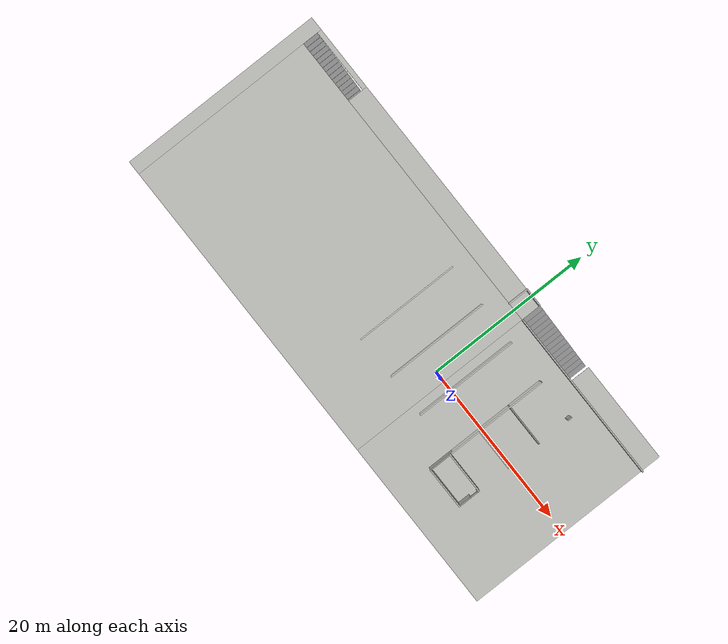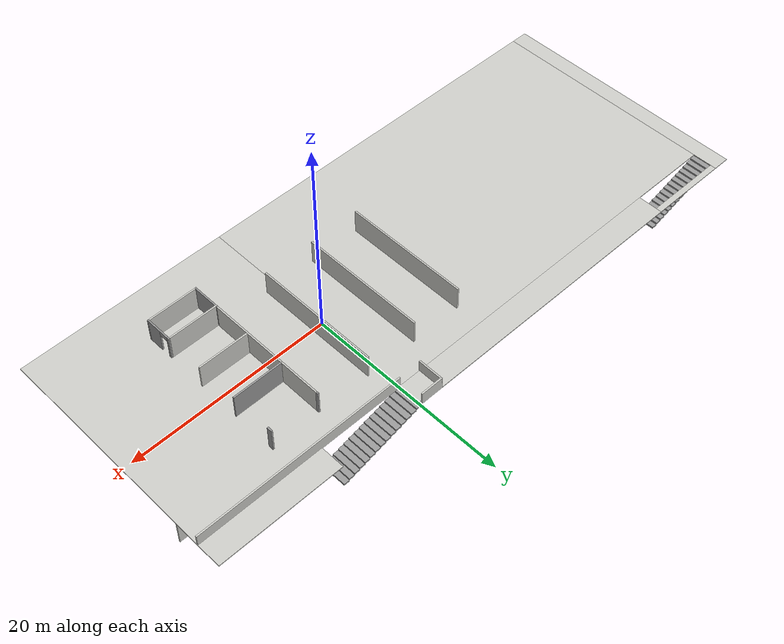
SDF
<sdf version="1.6">
 <model name="ifes_bloco_m">
  <pose>-8.25935 0.618855 0 0 -0 0</pose>
  <link name="Floor_0">
   <pose>0.157128 0.038162 2.5 0 -0 0</pose>
   <visual name="Floor_0_Visual_0">
    <pose>-28.976 0 0.05 0 -0 0</pose>
    <geometry><box><size>1.64864 24.7557 0.1</size></box></geometry>
    <material>
     <script><uri>file://media/materials/scripts/gazebo.material</uri><name>Gazebo/CeilingTiled</name></script>
     <ambient>1 1 1 1</ambient>
    </material>
    <meta><layer>1</layer></meta>
   </visual>
   <collision name="Floor_0_Collision_0">
    <geometry><box><size>1.64864 24.7557 0.1</size></box></geometry>
    <pose>-28.976 0 0.05 0 -0 0</pose>
   </collision>
   <visual name="Floor_0_Visual_1">
    <pose>-9.42841 -1.21298 0.05 0 -0 0</pose>
    <geometry><box><size>37.4466 22.3297 0.1</size></box></geometry>
    <material>
     <script><uri>file://media/materials/scripts/gazebo.material</uri><name>Gazebo/CeilingTiled</name></script>
     <ambient>1 1 1 1</ambient>
    </material>
    <meta><layer>1</layer></meta>
   </visual>
   <collision name="Floor_0_Collision_1">
    <geometry><box><size>37.4466 22.3297 0.1</size></box></geometry>
    <pose>-9.42841 -1.21298 0.05 0 -0 0</pose>
   </collision>
   <visual name="Floor_0_Visual_2">
    <pose>19.5476 -1.22768 0.05 0 -0 0</pose>
    <geometry><box><size>20.5055 22.3003 0.1</size></box></geometry>
    <material>
     <script><uri>file://media/materials/scripts/gazebo.material</uri><name>Gazebo/CeilingTiled</name></script>
     <ambient>1 1 1 1</ambient>
    </material>
    <meta><layer>1</layer></meta>
   </visual>
   <collision name="Floor_0_Collision_2">
    <geometry><box><size>20.5055 22.3003 0.1</size></box></geometry>
    <pose>19.5476 -1.22768 0.05 0 -0 0</pose>
   </collision>
   <visual name="Floor_0_Visual_3">
    <pose>23.7241 11.1502 0.05 0 -0 0</pose>
    <geometry><box><size>12.1525 2.45536 0.1</size></box></geometry>
    <material>
     <script><uri>file://media/materials/scripts/gazebo.material</uri><name>Gazebo/CeilingTiled</name></script>
     <ambient>1 1 1 1</ambient>
    </material>
    <meta><layer>1</layer></meta>
   </visual>
   <collision name="Floor_0_Collision_3">
    <geometry><box><size>12.1525 2.45536 0.1</size></box></geometry>
    <pose>23.7241 11.1502 0.05 0 -0 0</pose>
   </collision>
   <visual name="Floor_0_Visual_4">
    <pose>-5.55039 11.1649 0.05 0 -0 0</pose>
    <geometry><box><size>29.6905 2.42596 0.1</size></box></geometry>
    <material>
     <script><uri>file://media/materials/scripts/gazebo.material</uri><name>Gazebo/CeilingTiled</name></script>
     <ambient>1 1 1 1</ambient>
    </material>
    <meta><layer>1</layer></meta>
   </visual>
   <collision name="Floor_0_Collision_4">
    <geometry><box><size>29.6905 2.42596 0.1</size></box></geometry>
    <pose>-5.55039 11.1649 0.05 0 -0 0</pose>
   </collision>
   <visual name="Floor_0_Visual_5">
    <pose>-24.2737 12.1043 0.05 0 -0 0</pose>
    <geometry><box><size>7.75603 0.546998 0.1</size></box></geometry>
    <material>
     <script><uri>file://media/materials/scripts/gazebo.material</uri><name>Gazebo/CeilingTiled</name></script>
     <ambient>1 1 1 1</ambient>
    </material>
    <meta><layer>1</layer></meta>
   </visual>
   <collision name="Floor_0_Collision_5">
    <geometry><box><size>7.75603 0.546998 0.1</size></box></geometry>
    <pose>-24.2737 12.1043 0.05 0 -0 0</pose>
   </collision>
  </link>
  <link name="Stairs_0">
   <visual name="Stairs_0_Visual_0">
    <pose>-20.4971 10.9295 0.083333 0 -0 -1.5708</pose>
    <geometry><box><size>1.87896 0.517069 0.166667</size></box></geometry>
    <material>
     <script><uri>file://media/materials/scripts/gazebo.material</uri><name>Gazebo/Grey</name></script>
     <ambient>1 1 1 1</ambient>
    </material>
    <meta><layer>0</layer></meta>
   </visual>
   <collision name="Stairs_0_Collision_0">
    <geometry><box><size>1.87896 0.517069 0.166667</size></box></geometry>
    <pose>-20.4971 10.9295 0.083333 0 -0 -1.5708</pose>
   </collision>
   <visual name="Stairs_0_Visual_1">
    <pose>-21.0141 10.9295 0.25 0 -0 -1.5708</pose>
    <geometry><box><size>1.87896 0.517069 0.166667</size></box></geometry>
    <material>
     <script><uri>file://media/materials/scripts/gazebo.material</uri><name>Gazebo/Grey</name></script>
     <ambient>1 1 1 1</ambient>
    </material>
    <meta><layer>0</layer></meta>
   </visual>
   <collision name="Stairs_0_Collision_1">
    <geometry><box><size>1.87896 0.517069 0.166667</size></box></geometry>
    <pose>-21.0141 10.9295 0.25 0 -0 -1.5708</pose>
   </collision>
   <visual name="Stairs_0_Visual_2">
    <pose>-21.5312 10.9295 0.416667 0 -0 -1.5708</pose>
    <geometry><box><size>1.87896 0.517069 0.166667</size></box></geometry>
    <material>
     <script><uri>file://media/materials/scripts/gazebo.material</uri><name>Gazebo/Grey</name></script>
     <ambient>1 1 1 1</ambient>
    </material>
    <meta><layer>0</layer></meta>
   </visual>
   <collision name="Stairs_0_Collision_2">
    <geometry><box><size>1.87896 0.517069 0.166667</size></box></geometry>
    <pose>-21.5312 10.9295 0.416667 0 -0 -1.5708</pose>
   </collision>
   <visual name="Stairs_0_Visual_3">
    <pose>-22.0483 10.9295 0.583333 0 -0 -1.5708</pose>
    <geometry><box><size>1.87896 0.517069 0.166667</size></box></geometry>
    <material>
     <script><uri>file://media/materials/scripts/gazebo.material</uri><name>Gazebo/Grey</name></script>
     <ambient>1 1 1 1</ambient>
    </material>
    <meta><layer>0</layer></meta>
   </visual>
   <collision name="Stairs_0_Collision_3">
    <geometry><box><size>1.87896 0.517069 0.166667</size></box></geometry>
    <pose>-22.0483 10.9295 0.583333 0 -0 -1.5708</pose>
   </collision>
   <visual name="Stairs_0_Visual_4">
    <pose>-22.5653 10.9295 0.75 0 -0 -1.5708</pose>
    <geometry><box><size>1.87896 0.517069 0.166667</size></box></geometry>
    <material>
     <script><uri>file://media/materials/scripts/gazebo.material</uri><name>Gazebo/Grey</name></script>
     <ambient>1 1 1 1</ambient>
    </material>
    <meta><layer>0</layer></meta>
   </visual>
   <collision name="Stairs_0_Collision_4">
    <geometry><box><size>1.87896 0.517069 0.166667</size></box></geometry>
    <pose>-22.5653 10.9295 0.75 0 -0 -1.5708</pose>
   </collision>
   <visual name="Stairs_0_Visual_5">
    <pose>-23.0824 10.9295 0.916667 0 -0 -1.5708</pose>
    <geometry><box><size>1.87896 0.517069 0.166667</size></box></geometry>
    <material>
     <script><uri>file://media/materials/scripts/gazebo.material</uri><name>Gazebo/Grey</name></script>
     <ambient>1 1 1 1</ambient>
    </material>
    <meta><layer>0</layer></meta>
   </visual>
   <collision name="Stairs_0_Collision_5">
    <geometry><box><size>1.87896 0.517069 0.166667</size></box></geometry>
    <pose>-23.0824 10.9295 0.916667 0 -0 -1.5708</pose>
   </collision>
   <visual name="Stairs_0_Visual_6">
    <pose>-23.5995 10.9295 1.08333 0 -0 -1.5708</pose>
    <geometry><box><size>1.87896 0.517069 0.166667</size></box></geometry>
    <material>
     <script><uri>file://media/materials/scripts/gazebo.material</uri><name>Gazebo/Grey</name></script>
     <ambient>1 1 1 1</ambient>
    </material>
    <meta><layer>0</layer></meta>
   </visual>
   <collision name="Stairs_0_Collision_6">
    <geometry><box><size>1.87896 0.517069 0.166667</size></box></geometry>
    <pose>-23.5995 10.9295 1.08333 0 -0 -1.5708</pose>
   </collision>
   <visual name="Stairs_0_Visual_7">
    <pose>-24.1166 10.9295 1.25 0 -0 -1.5708</pose>
    <geometry><box><size>1.87896 0.517069 0.166667</size></box></geometry>
    <material>
     <script><uri>file://media/materials/scripts/gazebo.material</uri><name>Gazebo/Grey</name></script>
     <ambient>1 1 1 1</ambient>
    </material>
    <meta><layer>0</layer></meta>
   </visual>
   <collision name="Stairs_0_Collision_7">
    <geometry><box><size>1.87896 0.517069 0.166667</size></box></geometry>
    <pose>-24.1166 10.9295 1.25 0 -0 -1.5708</pose>
   </collision>
   <visual name="Stairs_0_Visual_8">
    <pose>-24.6336 10.9295 1.41667 0 -0 -1.5708</pose>
    <geometry><box><size>1.87896 0.517069 0.166667</size></box></geometry>
    <material>
     <script><uri>file://media/materials/scripts/gazebo.material</uri><name>Gazebo/Grey</name></script>
     <ambient>1 1 1 1</ambient>
    </material>
    <meta><layer>0</layer></meta>
   </visual>
   <collision name="Stairs_0_Collision_8">
    <geometry><box><size>1.87896 0.517069 0.166667</size></box></geometry>
    <pose>-24.6336 10.9295 1.41667 0 -0 -1.5708</pose>
   </collision>
   <visual name="Stairs_0_Visual_9">
    <pose>-25.1507 10.9295 1.58333 0 -0 -1.5708</pose>
    <geometry><box><size>1.87896 0.517069 0.166667</size></box></geometry>
    <material>
     <script><uri>file://media/materials/scripts/gazebo.material</uri><name>Gazebo/Grey</name></script>
     <ambient>1 1 1 1</ambient>
    </material>
    <meta><layer>0</layer></meta>
   </visual>
   <collision name="Stairs_0_Collision_9">
    <geometry><box><size>1.87896 0.517069 0.166667</size></box></geometry>
    <pose>-25.1507 10.9295 1.58333 0 -0 -1.5708</pose>
   </collision>
   <visual name="Stairs_0_Visual_10">
    <pose>-25.6678 10.9295 1.75 0 -0 -1.5708</pose>
    <geometry><box><size>1.87896 0.517069 0.166667</size></box></geometry>
    <material>
     <script><uri>file://media/materials/scripts/gazebo.material</uri><name>Gazebo/Grey</name></script>
     <ambient>1 1 1 1</ambient>
    </material>
    <meta><layer>0</layer></meta>
   </visual>
   <collision name="Stairs_0_Collision_10">
    <geometry><box><size>1.87896 0.517069 0.166667</size></box></geometry>
    <pose>-25.6678 10.9295 1.75 0 -0 -1.5708</pose>
   </collision>
   <visual name="Stairs_0_Visual_11">
    <pose>-26.1848 10.9295 1.91667 0 -0 -1.5708</pose>
    <geometry><box><size>1.87896 0.517069 0.166667</size></box></geometry>
    <material>
     <script><uri>file://media/materials/scripts/gazebo.material</uri><name>Gazebo/Grey</name></script>
     <ambient>1 1 1 1</ambient>
    </material>
    <meta><layer>0</layer></meta>
   </visual>
   <collision name="Stairs_0_Collision_11">
    <geometry><box><size>1.87896 0.517069 0.166667</size></box></geometry>
    <pose>-26.1848 10.9295 1.91667 0 -0 -1.5708</pose>
   </collision>
   <visual name="Stairs_0_Visual_12">
    <pose>-26.7019 10.9295 2.08333 0 -0 -1.5708</pose>
    <geometry><box><size>1.87896 0.517069 0.166667</size></box></geometry>
    <material>
     <script><uri>file://media/materials/scripts/gazebo.material</uri><name>Gazebo/Grey</name></script>
     <ambient>1 1 1 1</ambient>
    </material>
    <meta><layer>0</layer></meta>
   </visual>
   <collision name="Stairs_0_Collision_12">
    <geometry><box><size>1.87896 0.517069 0.166667</size></box></geometry>
    <pose>-26.7019 10.9295 2.08333 0 -0 -1.5708</pose>
   </collision>
   <visual name="Stairs_0_Visual_13">
    <pose>-27.219 10.9295 2.25 0 -0 -1.5708</pose>
    <geometry><box><size>1.87896 0.517069 0.166667</size></box></geometry>
    <material>
     <script><uri>file://media/materials/scripts/gazebo.material</uri><name>Gazebo/Grey</name></script>
     <ambient>1 1 1 1</ambient>
    </material>
    <meta><layer>0</layer></meta>
   </visual>
   <collision name="Stairs_0_Collision_13">
    <geometry><box><size>1.87896 0.517069 0.166667</size></box></geometry>
    <pose>-27.219 10.9295 2.25 0 -0 -1.5708</pose>
   </collision>
   <visual name="Stairs_0_Visual_14">
    <pose>-27.736 10.9295 2.41667 0 -0 -1.5708</pose>
    <geometry><box><size>1.87896 0.517069 0.166667</size></box></geometry>
    <material>
     <script><uri>file://media/materials/scripts/gazebo.material</uri><name>Gazebo/Grey</name></script>
     <ambient>1 1 1 1</ambient>
    </material>
    <meta><layer>0</layer></meta>
   </visual>
   <collision name="Stairs_0_Collision_14">
    <geometry><box><size>1.87896 0.517069 0.166667</size></box></geometry>
    <pose>-27.736 10.9295 2.41667 0 -0 -1.5708</pose>
   </collision>
  </link>
  <link name="Stairs_1">
   <visual name="Stairs_1_Visual_0">
    <pose>17.5266 11.2024 0.083333 0 -0 -1.5708</pose>
    <geometry><box><size>2.4835 0.556867 0.166667</size></box></geometry>
    <material>
     <script><uri>file://media/materials/scripts/gazebo.material</uri><name>Gazebo/Grey</name></script>
     <ambient>1 1 1 1</ambient>
    </material>
    <meta><layer>0</layer></meta>
   </visual>
   <collision name="Stairs_1_Collision_0">
    <geometry><box><size>2.4835 0.556867 0.166667</size></box></geometry>
    <pose>17.5266 11.2024 0.083333 0 -0 -1.5708</pose>
   </collision>
   <visual name="Stairs_1_Visual_1">
    <pose>16.9697 11.2024 0.25 0 -0 -1.5708</pose>
    <geometry><box><size>2.4835 0.556867 0.166667</size></box></geometry>
    <material>
     <script><uri>file://media/materials/scripts/gazebo.material</uri><name>Gazebo/Grey</name></script>
     <ambient>1 1 1 1</ambient>
    </material>
    <meta><layer>0</layer></meta>
   </visual>
   <collision name="Stairs_1_Collision_1">
    <geometry><box><size>2.4835 0.556867 0.166667</size></box></geometry>
    <pose>16.9697 11.2024 0.25 0 -0 -1.5708</pose>
   </collision>
   <visual name="Stairs_1_Visual_2">
    <pose>16.4128 11.2024 0.416667 0 -0 -1.5708</pose>
    <geometry><box><size>2.4835 0.556867 0.166667</size></box></geometry>
    <material>
     <script><uri>file://media/materials/scripts/gazebo.material</uri><name>Gazebo/Grey</name></script>
     <ambient>1 1 1 1</ambient>
    </material>
    <meta><layer>0</layer></meta>
   </visual>
   <collision name="Stairs_1_Collision_2">
    <geometry><box><size>2.4835 0.556867 0.166667</size></box></geometry>
    <pose>16.4128 11.2024 0.416667 0 -0 -1.5708</pose>
   </collision>
   <visual name="Stairs_1_Visual_3">
    <pose>15.856 11.2024 0.583333 0 -0 -1.5708</pose>
    <geometry><box><size>2.4835 0.556867 0.166667</size></box></geometry>
    <material>
     <script><uri>file://media/materials/scripts/gazebo.material</uri><name>Gazebo/Grey</name></script>
     <ambient>1 1 1 1</ambient>
    </material>
    <meta><layer>0</layer></meta>
   </visual>
   <collision name="Stairs_1_Collision_3">
    <geometry><box><size>2.4835 0.556867 0.166667</size></box></geometry>
    <pose>15.856 11.2024 0.583333 0 -0 -1.5708</pose>
   </collision>
   <visual name="Stairs_1_Visual_4">
    <pose>15.2991 11.2024 0.75 0 -0 -1.5708</pose>
    <geometry><box><size>2.4835 0.556867 0.166667</size></box></geometry>
    <material>
     <script><uri>file://media/materials/scripts/gazebo.material</uri><name>Gazebo/Grey</name></script>
     <ambient>1 1 1 1</ambient>
    </material>
    <meta><layer>0</layer></meta>
   </visual>
   <collision name="Stairs_1_Collision_4">
    <geometry><box><size>2.4835 0.556867 0.166667</size></box></geometry>
    <pose>15.2991 11.2024 0.75 0 -0 -1.5708</pose>
   </collision>
   <visual name="Stairs_1_Visual_5">
    <pose>14.7422 11.2024 0.916667 0 -0 -1.5708</pose>
    <geometry><box><size>2.4835 0.556867 0.166667</size></box></geometry>
    <material>
     <script><uri>file://media/materials/scripts/gazebo.material</uri><name>Gazebo/Grey</name></script>
     <ambient>1 1 1 1</ambient>
    </material>
    <meta><layer>0</layer></meta>
   </visual>
   <collision name="Stairs_1_Collision_5">
    <geometry><box><size>2.4835 0.556867 0.166667</size></box></geometry>
    <pose>14.7422 11.2024 0.916667 0 -0 -1.5708</pose>
   </collision>
   <visual name="Stairs_1_Visual_6">
    <pose>14.1854 11.2024 1.08333 0 -0 -1.5708</pose>
    <geometry><box><size>2.4835 0.556867 0.166667</size></box></geometry>
    <material>
     <script><uri>file://media/materials/scripts/gazebo.material</uri><name>Gazebo/Grey</name></script>
     <ambient>1 1 1 1</ambient>
    </material>
    <meta><layer>0</layer></meta>
   </visual>
   <collision name="Stairs_1_Collision_6">
    <geometry><box><size>2.4835 0.556867 0.166667</size></box></geometry>
    <pose>14.1854 11.2024 1.08333 0 -0 -1.5708</pose>
   </collision>
   <visual name="Stairs_1_Visual_7">
    <pose>13.6285 11.2024 1.25 0 -0 -1.5708</pose>
    <geometry><box><size>2.4835 0.556867 0.166667</size></box></geometry>
    <material>
     <script><uri>file://media/materials/scripts/gazebo.material</uri><name>Gazebo/Grey</name></script>
     <ambient>1 1 1 1</ambient>
    </material>
    <meta><layer>0</layer></meta>
   </visual>
   <collision name="Stairs_1_Collision_7">
    <geometry><box><size>2.4835 0.556867 0.166667</size></box></geometry>
    <pose>13.6285 11.2024 1.25 0 -0 -1.5708</pose>
   </collision>
   <visual name="Stairs_1_Visual_8">
    <pose>13.0716 11.2024 1.41667 0 -0 -1.5708</pose>
    <geometry><box><size>2.4835 0.556867 0.166667</size></box></geometry>
    <material>
     <script><uri>file://media/materials/scripts/gazebo.material</uri><name>Gazebo/Grey</name></script>
     <ambient>1 1 1 1</ambient>
    </material>
    <meta><layer>0</layer></meta>
   </visual>
   <collision name="Stairs_1_Collision_8">
    <geometry><box><size>2.4835 0.556867 0.166667</size></box></geometry>
    <pose>13.0716 11.2024 1.41667 0 -0 -1.5708</pose>
   </collision>
   <visual name="Stairs_1_Visual_9">
    <pose>12.5148 11.2024 1.58333 0 -0 -1.5708</pose>
    <geometry><box><size>2.4835 0.556867 0.166667</size></box></geometry>
    <material>
     <script><uri>file://media/materials/scripts/gazebo.material</uri><name>Gazebo/Grey</name></script>
     <ambient>1 1 1 1</ambient>
    </material>
    <meta><layer>0</layer></meta>
   </visual>
   <collision name="Stairs_1_Collision_9">
    <geometry><box><size>2.4835 0.556867 0.166667</size></box></geometry>
    <pose>12.5148 11.2024 1.58333 0 -0 -1.5708</pose>
   </collision>
   <visual name="Stairs_1_Visual_10">
    <pose>11.9579 11.2024 1.75 0 -0 -1.5708</pose>
    <geometry><box><size>2.4835 0.556867 0.166667</size></box></geometry>
    <material>
     <script><uri>file://media/materials/scripts/gazebo.material</uri><name>Gazebo/Grey</name></script>
     <ambient>1 1 1 1</ambient>
    </material>
    <meta><layer>0</layer></meta>
   </visual>
   <collision name="Stairs_1_Collision_10">
    <geometry><box><size>2.4835 0.556867 0.166667</size></box></geometry>
    <pose>11.9579 11.2024 1.75 0 -0 -1.5708</pose>
   </collision>
   <visual name="Stairs_1_Visual_11">
    <pose>11.401 11.2024 1.91667 0 -0 -1.5708</pose>
    <geometry><box><size>2.4835 0.556867 0.166667</size></box></geometry>
    <material>
     <script><uri>file://media/materials/scripts/gazebo.material</uri><name>Gazebo/Grey</name></script>
     <ambient>1 1 1 1</ambient>
    </material>
    <meta><layer>0</layer></meta>
   </visual>
   <collision name="Stairs_1_Collision_11">
    <geometry><box><size>2.4835 0.556867 0.166667</size></box></geometry>
    <pose>11.401 11.2024 1.91667 0 -0 -1.5708</pose>
   </collision>
   <visual name="Stairs_1_Visual_12">
    <pose>10.8442 11.2024 2.08333 0 -0 -1.5708</pose>
    <geometry><box><size>2.4835 0.556867 0.166667</size></box></geometry>
    <material>
     <script><uri>file://media/materials/scripts/gazebo.material</uri><name>Gazebo/Grey</name></script>
     <ambient>1 1 1 1</ambient>
    </material>
    <meta><layer>0</layer></meta>
   </visual>
   <collision name="Stairs_1_Collision_12">
    <geometry><box><size>2.4835 0.556867 0.166667</size></box></geometry>
    <pose>10.8442 11.2024 2.08333 0 -0 -1.5708</pose>
   </collision>
   <visual name="Stairs_1_Visual_13">
    <pose>10.2873 11.2024 2.25 0 -0 -1.5708</pose>
    <geometry><box><size>2.4835 0.556867 0.166667</size></box></geometry>
    <material>
     <script><uri>file://media/materials/scripts/gazebo.material</uri><name>Gazebo/Grey</name></script>
     <ambient>1 1 1 1</ambient>
    </material>
    <meta><layer>0</layer></meta>
   </visual>
   <collision name="Stairs_1_Collision_13">
    <geometry><box><size>2.4835 0.556867 0.166667</size></box></geometry>
    <pose>10.2873 11.2024 2.25 0 -0 -1.5708</pose>
   </collision>
   <visual name="Stairs_1_Visual_14">
    <pose>9.73044 11.2024 2.41667 0 -0 -1.5708</pose>
    <geometry><box><size>2.4835 0.556867 0.166667</size></box></geometry>
    <material>
     <script><uri>file://media/materials/scripts/gazebo.material</uri><name>Gazebo/Grey</name></script>
     <ambient>1 1 1 1</ambient>
    </material>
    <meta><layer>0</layer></meta>
   </visual>
   <collision name="Stairs_1_Collision_14">
    <geometry><box><size>2.4835 0.556867 0.166667</size></box></geometry>
    <pose>9.73044 11.2024 2.41667 0 -0 -1.5708</pose>
   </collision>
  </link>
  <link name="Wall_0">
   <collision name="Wall_0_Collision">
    <geometry><box><size>59.5 0.15 2.5</size></box></geometry>
    <pose>0 0 1.25 0 -0 0</pose>
   </collision>
   <visual name="Wall_0_Visual">
    <pose>0 0 1.25 0 -0 0</pose>
    <geometry><box><size>59.5 0.15 2.5</size></box></geometry>
    <material>
     <script><uri>file://media/materials/scripts/gazebo.material</uri><name>Gazebo/CeilingTiled</name></script>
     <ambient>1 1 1 1</ambient>
    </material>
    <meta><layer>0</layer></meta>
   </visual>
   <pose>0.181948 7.4609 0 0 -0 0</pose>
  </link>
  <link name="Wall_101">
   <collision name="Wall_101_Collision">
    <geometry><box><size>5 0.15 2.5</size></box></geometry>
    <pose>0 0 1.25 0 -0 0</pose>
   </collision>
   <visual name="Wall_101_Visual">
    <pose>0 0 1.25 0 -0 0</pose>
    <geometry><box><size>5 0.15 2.5</size></box></geometry>
    <material>
     <script><uri>file://media/materials/scripts/gazebo.material</uri><name>Gazebo/CeilingTiled</name></script>
     <ambient>1 1 1 1</ambient>
    </material>
    <meta><layer>1</layer></meta>
   </visual>
   <pose>18.1581 -0.902525 2.5 0 -0 3.14159</pose>
  </link>
  <link name="Wall_110">
   <collision name="Wall_110_Collision">
    <geometry><box><size>2.5 0.15 1.25</size></box></geometry>
    <pose>0 0 0.625 0 -0 0</pose>
   </collision>
   <visual name="Wall_110_Visual">
    <pose>0 0 0.625 0 -0 0</pose>
    <geometry><box><size>2.5 0.15 1.25</size></box></geometry>
    <material>
     <script><uri>file://media/materials/scripts/gazebo.material</uri><name>Gazebo/CeilingTiled</name></script>
     <ambient>0.921569 0.807843 0.615686 1</ambient>
    </material>
    <meta><layer>1</layer></meta>
   </visual>
   <pose>7.19935 11.1661 2.5 0 -0 1.5708</pose>
  </link>
  <link name="Wall_111">
   <collision name="Wall_111_Collision">
    <geometry><box><size>2.25 0.15 1.25</size></box></geometry>
    <pose>0 0 0.625 0 -0 0</pose>
   </collision>
   <visual name="Wall_111_Visual">
    <pose>0 0 0.625 0 -0 0</pose>
    <geometry><box><size>2.25 0.15 1.25</size></box></geometry>
    <material>
     <script><uri>file://media/materials/scripts/gazebo.material</uri><name>Gazebo/CeilingTiled</name></script>
     <ambient>0.921569 0.807843 0.615686 1</ambient>
    </material>
    <meta><layer>1</layer></meta>
   </visual>
   <pose>8.24935 12.3411 2.5 0 -0 0</pose>
  </link>
  <link name="Wall_115">
   <collision name="Wall_115_Collision">
    <geometry><box><size>20.5 0.15 1.2</size></box></geometry>
    <pose>0 0 0.6 0 -0 0</pose>
   </collision>
   <visual name="Wall_115_Visual">
    <pose>0 0 0.6 0 -0 0</pose>
    <geometry><box><size>20.5 0.15 1.2</size></box></geometry>
    <material>
     <script><uri>file://media/materials/scripts/gazebo.material</uri><name>Gazebo/CeilingTiled</name></script>
     <ambient>0.921569 0.807843 0.615686 1</ambient>
    </material>
    <meta><layer>1</layer></meta>
   </visual>
   <pose>19.7014 9.98264 2.5 0 -0 -0.000737</pose>
  </link>
  <link name="Wall_159">
   <collision name="Wall_159_Collision">
    <geometry><box><size>0.5 0.15 2.5</size></box></geometry>
    <pose>0 0 1.25 0 -0 0</pose>
   </collision>
   <visual name="Wall_159_Visual">
    <pose>0 0 1.25 0 -0 0</pose>
    <geometry><box><size>0.5 0.15 2.5</size></box></geometry>
    <material>
     <script><uri>file://media/materials/scripts/gazebo.material</uri><name>Gazebo/Grey</name></script>
     <ambient>1 1 1 1</ambient>
    </material>
    <meta><layer>1</layer></meta>
   </visual>
   <pose>20.5318 7.34297 2.5 0 -0 -1.5708</pose>
  </link>
  <link name="Wall_28">
   <collision name="Wall_28_Collision">
    <geometry><box><size>0.5 0.15 2.5</size></box></geometry>
    <pose>0 0 1.25 0 -0 0</pose>
   </collision>
   <visual name="Wall_28_Visual">
    <pose>0 0 1.25 0 -0 0</pose>
    <geometry><box><size>0.5 0.15 2.5</size></box></geometry>
    <material>
     <script><uri>file://media/materials/scripts/gazebo.material</uri><name>Gazebo/Grey</name></script>
     <ambient>1 1 1 1</ambient>
    </material>
    <meta><layer>0</layer></meta>
   </visual>
   <pose>15.6425 -7.18425 0 0 -0 0</pose>
  </link>
  <link name="Wall_29">
   <collision name="Wall_29_Collision">
    <geometry><box><size>6 0.15 2.5</size></box></geometry>
    <pose>0 0 1.25 0 -0 0</pose>
   </collision>
   <visual name="Wall_29_Visual">
    <pose>0 0 1.25 0 -0 0</pose>
    <geometry><box><size>6 0.15 2.5</size></box></geometry>
    <material>
     <script><uri>file://media/materials/scripts/gazebo.material</uri><name>Gazebo/CeilingTiled</name></script>
     <ambient>1 1 1 1</ambient>
    </material>
    <meta><layer>0</layer></meta>
   </visual>
   <pose>18.7425 -7.18425 0 0 -0 0</pose>
  </link>
  <link name="Wall_36">
   <collision name="Wall_36_Collision">
    <geometry><box><size>12 0.15 2.5</size></box></geometry>
    <pose>0 0 1.25 0 -0 0</pose>
   </collision>
   <visual name="Wall_36_Visual">
    <pose>0 0 1.25 0 -0 0</pose>
    <geometry><box><size>12 0.15 2.5</size></box></geometry>
    <material>
     <script><uri>file://media/materials/scripts/gazebo.material</uri><name>Gazebo/CeilingTiled</name></script>
     <ambient>1 1 1 1</ambient>
    </material>
    <meta><layer>0</layer></meta>
   </visual>
   <pose>15.6938 1.3493 0 0 -0 1.5708</pose>
  </link>
  <link name="Wall_37">
   <collision name="Wall_37_Collision">
    <geometry><box><size>0.25 0.15 2.5</size></box></geometry>
    <pose>0 0 1.25 0 -0 0</pose>
   </collision>
   <visual name="Wall_37_Visual">
    <pose>0 0 1.25 0 -0 0</pose>
    <geometry><box><size>0.25 0.15 2.5</size></box></geometry>
    <material>
     <script><uri>file://media/materials/scripts/gazebo.material</uri><name>Gazebo/Grey</name></script>
     <ambient>1 1 1 1</ambient>
    </material>
    <meta><layer>0</layer></meta>
   </visual>
   <pose>15.6938 7.3243 0 0 -0 1.5708</pose>
  </link>
  <link name="Wall_39">
   <collision name="Wall_39_Collision">
    <geometry><box><size>12.25 0.15 2.5</size></box></geometry>
    <pose>0 0 1.25 0 -0 0</pose>
   </collision>
   <visual name="Wall_39_Visual">
    <pose>0 0 1.25 0 -0 0</pose>
    <geometry><box><size>12.25 0.15 2.5</size></box></geometry>
    <material>
     <script><uri>file://media/materials/scripts/gazebo.material</uri><name>Gazebo/CeilingTiled</name></script>
     <ambient>1 1 1 1</ambient>
    </material>
    <meta><layer>0</layer></meta>
   </visual>
   <pose>10.5217 1.4187 0 0 -0 -1.5708</pose>
  </link>
  <link name="Wall_41">
   <collision name="Wall_41_Collision">
    <geometry><box><size>12.25 0.15 2.5</size></box></geometry>
    <pose>0 0 1.25 0 -0 0</pose>
   </collision>
   <visual name="Wall_41_Visual">
    <pose>0 0 1.25 0 -0 0</pose>
    <geometry><box><size>12.25 0.15 2.5</size></box></geometry>
    <material>
     <script><uri>file://media/materials/scripts/gazebo.material</uri><name>Gazebo/CeilingTiled</name></script>
     <ambient>1 1 1 1</ambient>
    </material>
    <meta><layer>0</layer></meta>
   </visual>
   <pose>5.47302 1.49457 0 0 -0 1.5708</pose>
  </link>
  <link name="Wall_43">
   <collision name="Wall_43_Collision">
    <geometry><box><size>12.25 0.15 2.5</size></box></geometry>
    <pose>0 0 1.25 0 -0 0</pose>
   </collision>
   <visual name="Wall_43_Visual">
    <pose>0 0 1.25 0 -0 0</pose>
    <geometry><box><size>12.25 0.15 2.5</size></box></geometry>
    <material>
     <script><uri>file://media/materials/scripts/gazebo.material</uri><name>Gazebo/CeilingTiled</name></script>
     <ambient>1 1 1 1</ambient>
    </material>
    <meta><layer>0</layer></meta>
   </visual>
   <pose>0.445579 1.47106 0 0 -0 -1.5708</pose>
  </link>
  <link name="Wall_80">
   <collision name="Wall_80_Collision">
    <geometry><box><size>12 0.15 2.5</size></box></geometry>
    <pose>0 0 1.25 0 -0 0</pose>
   </collision>
   <visual name="Wall_80_Visual">
    <pose>0 0 1.25 0 -0 0</pose>
    <geometry><box><size>12 0.15 2.5</size></box></geometry>
    <material>
     <script><uri>file://media/materials/scripts/gazebo.material</uri><name>Gazebo/CeilingTiled</name></script>
     <ambient>1 1 1 1</ambient>
    </material>
    <meta><layer>1</layer></meta>
   </visual>
   <pose>15.6938 1.3493 2.5 0 -0 1.5708</pose>
  </link>
  <link name="Wall_81">
   <collision name="Wall_81_Collision">
    <geometry><box><size>0.25 0.15 2.5</size></box></geometry>
    <pose>0 0 1.25 0 -0 0</pose>
   </collision>
   <visual name="Wall_81_Visual">
    <pose>0 0 1.25 0 -0 0</pose>
    <geometry><box><size>0.25 0.15 2.5</size></box></geometry>
    <material>
     <script><uri>file://media/materials/scripts/gazebo.material</uri><name>Gazebo/Grey</name></script>
     <ambient>1 1 1 1</ambient>
    </material>
    <meta><layer>1</layer></meta>
   </visual>
   <pose>15.6938 7.3243 2.5 0 -0 1.5708</pose>
  </link>
  <link name="Wall_82">
   <collision name="Wall_82_Collision">
    <geometry><box><size>12.25 0.15 2.5</size></box></geometry>
    <pose>0 0 1.25 0 -0 0</pose>
   </collision>
   <visual name="Wall_82_Visual">
    <pose>0 0 1.25 0 -0 0</pose>
    <geometry><box><size>12.25 0.15 2.5</size></box></geometry>
    <material>
     <script><uri>file://media/materials/scripts/gazebo.material</uri><name>Gazebo/CeilingTiled</name></script>
     <ambient>1 1 1 1</ambient>
    </material>
    <meta><layer>1</layer></meta>
   </visual>
   <pose>10.5217 1.4187 2.5 0 -0 -1.5708</pose>
  </link>
  <link name="Wall_83">
   <collision name="Wall_83_Collision">
    <geometry><box><size>12.25 0.15 2.5</size></box></geometry>
    <pose>0 0 1.25 0 -0 0</pose>
   </collision>
   <visual name="Wall_83_Visual">
    <pose>0 0 1.25 0 -0 0</pose>
    <geometry><box><size>12.25 0.15 2.5</size></box></geometry>
    <material>
     <script><uri>file://media/materials/scripts/gazebo.material</uri><name>Gazebo/CeilingTiled</name></script>
     <ambient>1 1 1 1</ambient>
    </material>
    <meta><layer>1</layer></meta>
   </visual>
   <pose>5.47302 1.49457 2.5 0 -0 1.5708</pose>
  </link>
  <link name="Wall_84">
   <collision name="Wall_84_Collision">
    <geometry><box><size>12.25 0.15 2.5</size></box></geometry>
    <pose>0 0 1.25 0 -0 0</pose>
   </collision>
   <visual name="Wall_84_Visual">
    <pose>0 0 1.25 0 -0 0</pose>
    <geometry><box><size>12.25 0.15 2.5</size></box></geometry>
    <material>
     <script><uri>file://media/materials/scripts/gazebo.material</uri><name>Gazebo/CeilingTiled</name></script>
     <ambient>1 1 1 1</ambient>
    </material>
    <meta><layer>1</layer></meta>
   </visual>
   <pose>0.445579 1.47106 2.5 0 -0 -1.5708</pose>
  </link>
  <link name="Wall_91">
   <collision name="Wall_91_Collision">
    <geometry><box><size>3 0.15 2.5</size></box></geometry>
    <pose>0 0 1.25 0 -0 0</pose>
   </collision>
   <visual name="Wall_91_Visual">
    <pose>0 0 1.25 0 -0 0</pose>
    <geometry><box><size>3 0.15 2.5</size></box></geometry>
    <material>
     <script><uri>file://media/materials/scripts/gazebo.material</uri><name>Gazebo/Grey</name></script>
     <ambient>1 1 1 1</ambient>
    </material>
    <meta><layer>1</layer></meta>
   </visual>
   <pose>15.6938 -6.0007 2.5 0 -0 -1.5708</pose>
  </link>
  <link name="Wall_92">
   <collision name="Wall_92_Collision">
    <geometry><box><size>5 0.15 2.5</size></box></geometry>
    <pose>0 0 1.25 0 -0 0</pose>
   </collision>
   <visual name="Wall_92_Visual">
    <pose>0 0 1.25 0 -0 0</pose>
    <geometry><box><size>5 0.15 2.5</size></box></geometry>
    <material>
     <script><uri>file://media/materials/scripts/gazebo.material</uri><name>Gazebo/CeilingTiled</name></script>
     <ambient>1 1 1 1</ambient>
    </material>
    <meta><layer>1</layer></meta>
   </visual>
   <pose>18.1188 -7.4257 2.5 0 -0 0</pose>
  </link>
  <link name="Wall_93">
   <pose>20.5438 -6.1257 2.5 0 -0 1.5708</pose>
   <visual name="Wall_93_Visual_0">
    <pose>-0.586151 0 1.25 0 -0 0</pose>
    <geometry><box><size>1.5777 0.15 2.5</size></box></geometry>
    <material>
     <script><uri>file://media/materials/scripts/gazebo.material</uri><name>Gazebo/Grey</name></script>
     <ambient>1 1 1 1</ambient>
    </material>
    <meta><layer>1</layer></meta>
   </visual>
   <collision name="Wall_93_Collision_0">
    <geometry><box><size>1.5777 0.15 2.5</size></box></geometry>
    <pose>-0.586151 0 1.25 0 -0 0</pose>
   </collision>
   <visual name="Wall_93_Visual_1">
    <pose>1.23885 0 1.25 0 -0 0</pose>
    <geometry><box><size>0.272303 0.15 2.5</size></box></geometry>
    <material>
     <script><uri>file://media/materials/scripts/gazebo.material</uri><name>Gazebo/Grey</name></script>
     <ambient>1 1 1 1</ambient>
    </material>
    <meta><layer>1</layer></meta>
   </visual>
   <collision name="Wall_93_Collision_1">
    <geometry><box><size>0.272303 0.15 2.5</size></box></geometry>
    <pose>1.23885 0 1.25 0 -0 0</pose>
   </collision>
   <visual name="Wall_93_Visual_2">
    <pose>0.652697 0 2.25 0 -0 0</pose>
    <geometry><box><size>0.9 0.15 0.5</size></box></geometry>
    <material>
     <script><uri>file://media/materials/scripts/gazebo.material</uri><name>Gazebo/Grey</name></script>
     <ambient>1 1 1 1</ambient>
    </material>
    <meta><layer>1</layer></meta>
   </visual>
   <collision name="Wall_93_Collision_2">
    <geometry><box><size>0.9 0.15 0.5</size></box></geometry>
    <pose>0.652697 0 2.25 0 -0 0</pose>
   </collision>
  </link>
  <link name="Wall_94">
   <collision name="Wall_94_Collision">
    <geometry><box><size>5 0.15 2.5</size></box></geometry>
    <pose>0 0 1.25 0 -0 0</pose>
   </collision>
   <visual name="Wall_94_Visual">
    <pose>0 0 1.25 0 -0 0</pose>
    <geometry><box><size>5 0.15 2.5</size></box></geometry>
    <material>
     <script><uri>file://media/materials/scripts/gazebo.material</uri><name>Gazebo/CeilingTiled</name></script>
     <ambient>1 1 1 1</ambient>
    </material>
    <meta><layer>1</layer></meta>
   </visual>
   <pose>18.1188 -4.8257 2.5 0 -0 3.14159</pose>
  </link>
  <link name="Wall_98">
   <collision name="Wall_98_Collision">
    <geometry><box><size>5 0.15 2.5</size></box></geometry>
    <pose>0 0 1.25 0 -0 0</pose>
   </collision>
   <visual name="Wall_98_Visual">
    <pose>0 0 1.25 0 -0 0</pose>
    <geometry><box><size>5 0.15 2.5</size></box></geometry>
    <material>
     <script><uri>file://media/materials/scripts/gazebo.material</uri><name>Gazebo/Grey</name></script>
     <ambient>1 1 1 1</ambient>
    </material>
    <meta><layer>1</layer></meta>
   </visual>
   <pose>18.1176 3.18349 2.5 0 -0 3.14159</pose>
  </link>
  <static>1</static>
 </model>
</sdf>
